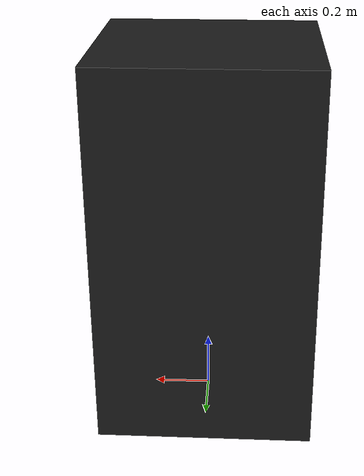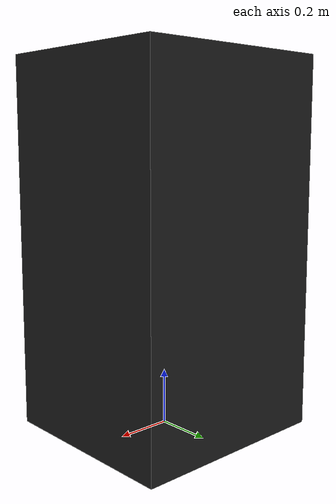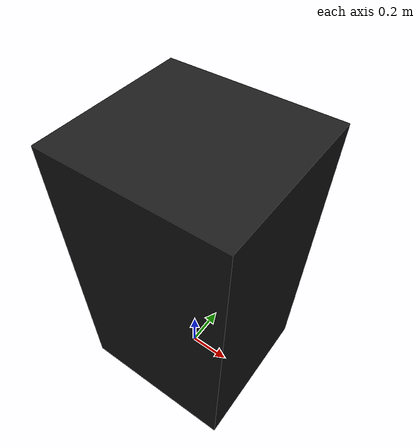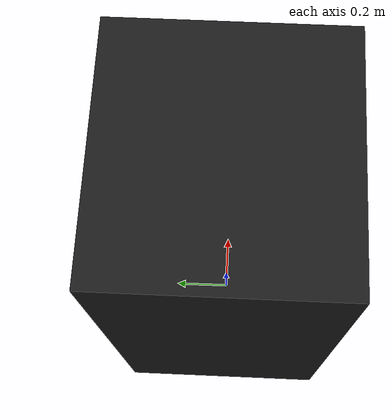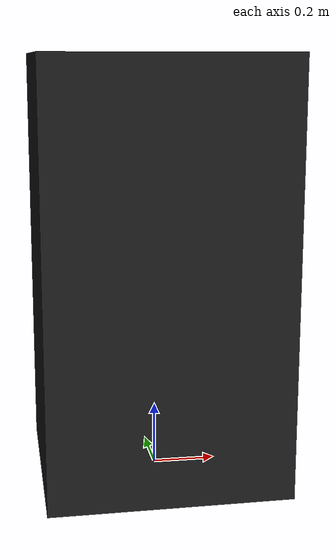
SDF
<?xml version="1.0"?>
<sdf version="1.6">
  <model name="robotics_testlabs/flight_case">
    <link name="1_link">
      <collision name="1_col">
        <geometry>
          <box>
            <size>0.75 0.7 1.33</size>
          </box>
        </geometry>
      </collision>
      <visual name="1_vis">
        <geometry>
          <box>
            <size>0.75 0.7 1.33</size>
          </box>
        </geometry>
        <material>
          <ambient>0.1 0.1 0.1 1</ambient>
        </material>
      </visual>
      <pose>0 0 0.665 0 0 0</pose>
    </link>
    <static>true</static>
  </model>
</sdf>
